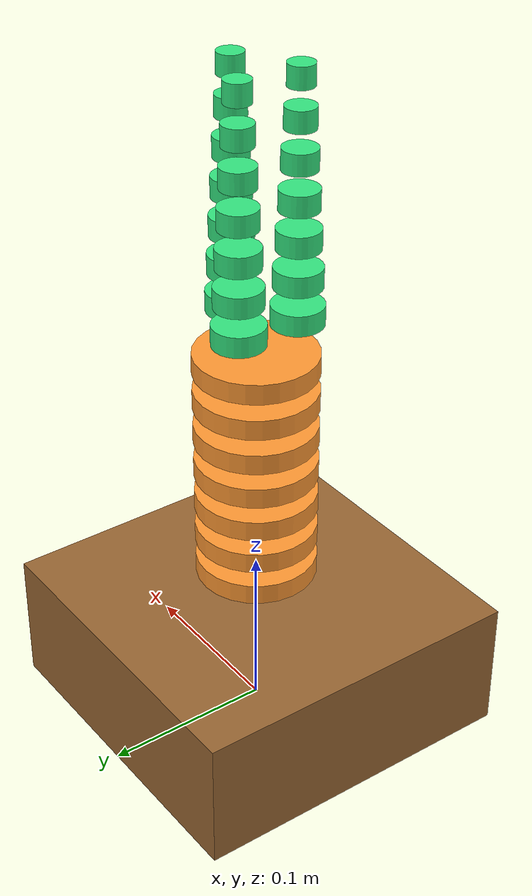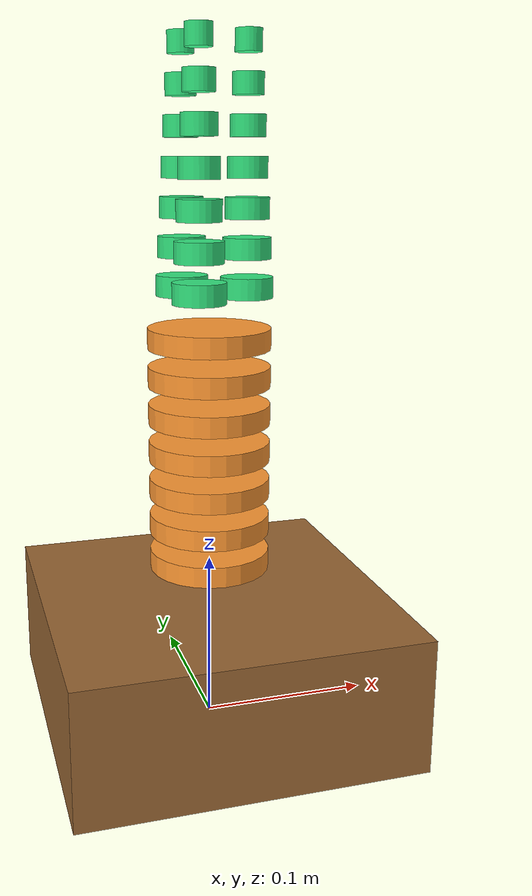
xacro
<?xml version="1.0"?>
<robot xmlns:xacro="http://www.ros.org/wiki/xacro" name="gripper_robot">

  <!-- Robot Dimensional Constants -->
  <xacro:property name="ground_offset" value="0.080"/>       <!-- 80mm - distance from ground to first joints -->
  <xacro:property name="H" value="0.022"/>                   <!-- 22mm - equal H distance everywhere -->
  <xacro:property name="revolute_limit" value="0.2094"/>     <!-- ±12° in radians -->
  <xacro:property name="disc_radius" value="0.0352"/>        <!-- 35.2mm radius = 70.4mm diameter -->
  <xacro:property name="disc_height" value="0.012"/>         <!-- 12mm disc thickness -->

  <!-- Gripper Constants -->
  <xacro:property name="finger_base_radius" value="0.015"/>  <!-- 15mm radius = 30mm diameter at base -->
  <xacro:property name="finger_tip_radius" value="0.0075"/>  <!-- 7.5mm radius = 15mm diameter at tip -->
  <xacro:property name="finger_offset" value="0.022"/>       <!-- ~62% of disc radius = 22mm from center (between 25% and 100%) -->

  <!-- Robot Segment Macro (for main body) -->
  <xacro:macro name="robot_segment" params="segment_num parent_link is_actuated_x is_actuated_y mimic_segment disc_color">

    <!-- Revolute Joint X (Roll) -->
    <joint name="seg${segment_num}_joint_x" type="revolute">
      <parent link="${parent_link}"/>
      <child link="seg${segment_num}_x_link"/>
      <origin xyz="0 0 0" rpy="0 0 0"/>
      <axis xyz="1 0 0"/>
      <limit lower="-${revolute_limit}" upper="${revolute_limit}" effort="100" velocity="1.0"/>
      <xacro:if value="${is_actuated_x}">
        <dynamics damping="0.7" friction="0.0"/>
      </xacro:if>
      <xacro:unless value="${is_actuated_x}">
        <mimic joint="seg${mimic_segment}_joint_x" multiplier="1.0" offset="0.0"/>
        <dynamics damping="0.1" friction="0.0"/>
      </xacro:unless>
    </joint>

    <link name="seg${segment_num}_x_link">
      <inertial>
        <origin xyz="0 0 0" rpy="0 0 0"/>
        <mass value="0.01"/>
        <inertia ixx="0.00001" ixy="0" ixz="0" iyy="0.00001" iyz="0" izz="0.00001"/>
      </inertial>
    </link>

    <!-- Revolute Joint Y (Pitch) -->
    <joint name="seg${segment_num}_joint_y" type="revolute">
      <parent link="seg${segment_num}_x_link"/>
      <child link="seg${segment_num}_y_link"/>
      <origin xyz="0 0 0" rpy="0 0 0"/>
      <axis xyz="0 1 0"/>
      <limit lower="-${revolute_limit}" upper="${revolute_limit}" effort="100" velocity="1.0"/>
      <xacro:if value="${is_actuated_y}">
        <dynamics damping="0.7" friction="0.0"/>
      </xacro:if>
      <xacro:unless value="${is_actuated_y}">
        <mimic joint="seg${mimic_segment}_joint_y" multiplier="1.0" offset="0.0"/>
        <dynamics damping="0.1" friction="0.0"/>
      </xacro:unless>
    </joint>

    <link name="seg${segment_num}_y_link">
      <inertial>
        <origin xyz="0 0 0" rpy="0 0 0"/>
        <mass value="0.01"/>
        <inertia ixx="0.00001" ixy="0" ixz="0" iyy="0.00001" iyz="0" izz="0.00001"/>
      </inertial>
    </link>

    <!-- Fixed H distance joint -->
    <joint name="seg${segment_num}_fixed_h" type="fixed">
      <parent link="seg${segment_num}_y_link"/>
      <child link="seg${segment_num}_mid_link"/>
      <origin xyz="0 0 ${H}" rpy="0 0 0"/>
    </joint>

    <!-- Middle link with disc platform -->
    <link name="seg${segment_num}_mid_link">
      <visual>
        <origin xyz="0 0 0" rpy="0 0 0"/>
        <geometry>
          <cylinder radius="${disc_radius}" length="${disc_height}"/>
        </geometry>
        <material name="disc_${segment_num}">
          <color rgba="${disc_color}"/>
        </material>
      </visual>
      <collision>
        <origin xyz="0 0 0" rpy="0 0 0"/>
        <geometry>
          <cylinder radius="${disc_radius}" length="${disc_height}"/>
        </geometry>
      </collision>
      <inertial>
        <origin xyz="0 0 0" rpy="0 0 0"/>
        <mass value="0.5"/>
        <inertia ixx="0.002" ixy="0" ixz="0" iyy="0.002" iyz="0" izz="0.003"/>
      </inertial>
    </link>

  </xacro:macro>

  <!-- Gripper Finger Segment Macro -->
  <xacro:macro name="finger_segment" params="finger_num level_num parent_link is_actuated mimic_joint disc_radius_val">

    <!-- Revolute Joint (opens/closes) -->
    <joint name="finger${finger_num}_level${level_num}_joint" type="revolute">
      <parent link="${parent_link}"/>
      <child link="finger${finger_num}_level${level_num}_link"/>
      <origin xyz="0 0 0" rpy="0 0 0"/>
      <axis xyz="0 1 0"/>
      <limit lower="0" upper="${revolute_limit}" effort="50" velocity="1.0"/>
      <xacro:if value="${is_actuated}">
        <dynamics damping="0.5" friction="0.0"/>
      </xacro:if>
      <xacro:unless value="${is_actuated}">
        <mimic joint="${mimic_joint}" multiplier="1.0" offset="0.0"/>
        <dynamics damping="0.1" friction="0.0"/>
      </xacro:unless>
    </joint>

    <link name="finger${finger_num}_level${level_num}_link">
      <inertial>
        <origin xyz="0 0 0" rpy="0 0 0"/>
        <mass value="0.01"/>
        <inertia ixx="0.00001" ixy="0" ixz="0" iyy="0.00001" iyz="0" izz="0.00001"/>
      </inertial>
    </link>

    <!-- Fixed H distance to disc -->
    <joint name="finger${finger_num}_level${level_num}_fixed" type="fixed">
      <parent link="finger${finger_num}_level${level_num}_link"/>
      <child link="finger${finger_num}_level${level_num}_disc"/>
      <origin xyz="0 0 ${H}" rpy="0 0 0"/>
    </joint>

    <!-- Disc -->
    <link name="finger${finger_num}_level${level_num}_disc">
      <visual>
        <origin xyz="0 0 0" rpy="0 0 0"/>
        <geometry>
          <cylinder radius="${disc_radius_val}" length="${disc_height}"/>
        </geometry>
        <material name="finger${finger_num}_mat">
          <color rgba="0.2 0.9 0.5 1.0"/>
        </material>
      </visual>
      <collision>
        <origin xyz="0 0 0" rpy="0 0 0"/>
        <geometry>
          <cylinder radius="${disc_radius_val}" length="${disc_height}"/>
        </geometry>
      </collision>
      <inertial>
        <origin xyz="0 0 0" rpy="0 0 0"/>
        <mass value="0.1"/>
        <inertia ixx="0.0001" ixy="0" ixz="0" iyy="0.0001" iyz="0" izz="0.0001"/>
      </inertial>
    </link>

  </xacro:macro>

  <!-- Base Link -->
  <link name="base_link">
    <visual>
      <origin xyz="0 0 ${ground_offset/2}" rpy="0 0 0"/>
      <geometry>
        <box size="0.2 0.2 ${ground_offset}"/>
      </geometry>
      <material name="brown">
        <color rgba="0.6 0.4 0.2 1.0"/>
      </material>
    </visual>
    <collision>
      <origin xyz="0 0 ${ground_offset/2}" rpy="0 0 0"/>
      <geometry>
        <box size="0.2 0.2 ${ground_offset}"/>
      </geometry>
    </collision>
    <inertial>
      <origin xyz="0 0 ${ground_offset/2}" rpy="0 0 0"/>
      <mass value="2.0"/>
      <inertia ixx="0.01" ixy="0" ixz="0" iyy="0.01" iyz="0" izz="0.01"/>
    </inertial>
  </link>

  <joint name="base_to_seg1" type="fixed">
    <parent link="base_link"/>
    <child link="seg1_mount"/>
    <origin xyz="0 0 ${ground_offset}" rpy="0 0 0"/>
  </joint>

  <link name="seg1_mount">
    <inertial>
      <mass value="0.01"/>
      <inertia ixx="0.00001" ixy="0" ixz="0" iyy="0.00001" iyz="0" izz="0.00001"/>
    </inertial>
  </link>

  <!-- ===== BOTTOM 7 segments (ORANGE) ===== -->
  <xacro:robot_segment segment_num="1" parent_link="seg1_mount" is_actuated_x="true" is_actuated_y="true" mimic_segment="1" disc_color="1.0 0.6 0.2 1.0"/>
  <xacro:robot_segment segment_num="2" parent_link="seg1_mid_link" is_actuated_x="false" is_actuated_y="false" mimic_segment="1" disc_color="1.0 0.6 0.2 1.0"/>
  <xacro:robot_segment segment_num="3" parent_link="seg2_mid_link" is_actuated_x="false" is_actuated_y="false" mimic_segment="1" disc_color="1.0 0.6 0.2 1.0"/>
  <xacro:robot_segment segment_num="4" parent_link="seg3_mid_link" is_actuated_x="false" is_actuated_y="false" mimic_segment="1" disc_color="1.0 0.6 0.2 1.0"/>
  <xacro:robot_segment segment_num="5" parent_link="seg4_mid_link" is_actuated_x="false" is_actuated_y="false" mimic_segment="1" disc_color="1.0 0.6 0.2 1.0"/>
  <xacro:robot_segment segment_num="6" parent_link="seg5_mid_link" is_actuated_x="false" is_actuated_y="false" mimic_segment="1" disc_color="1.0 0.6 0.2 1.0"/>
  <xacro:robot_segment segment_num="7" parent_link="seg6_mid_link" is_actuated_x="false" is_actuated_y="false" mimic_segment="1" disc_color="1.0 0.6 0.2 1.0"/>

  <!-- ===== GRIPPER BASE (on top of seg7) ===== -->
  <joint name="gripper_base_joint" type="fixed">
    <parent link="seg7_mid_link"/>
    <child link="gripper_base"/>
    <origin xyz="0 0 ${disc_height/2}" rpy="0 0 0"/>
  </joint>

  <link name="gripper_base">
    <inertial>
      <mass value="0.1"/>
      <inertia ixx="0.0001" ixy="0" ixz="0" iyy="0.0001" iyz="0" izz="0.0001"/>
    </inertial>
  </link>

  <!-- ===== FINGER 1 (at 0°) ===== -->
  <joint name="finger1_mount" type="fixed">
    <parent link="gripper_base"/>
    <child link="finger1_base"/>
    <origin xyz="${finger_offset} 0 0" rpy="0 0 0"/>
  </joint>
  <link name="finger1_base">
    <inertial>
      <mass value="0.01"/>
      <inertia ixx="0.00001" ixy="0" ixz="0" iyy="0.00001" iyz="0" izz="0.00001"/>
    </inertial>
  </link>

  <!-- Finger 1 levels with tapering radius -->
  <xacro:finger_segment finger_num="1" level_num="1" parent_link="finger1_base" is_actuated="true" mimic_joint="" disc_radius_val="${finger_base_radius}"/>
  <xacro:finger_segment finger_num="1" level_num="2" parent_link="finger1_level1_disc" is_actuated="false" mimic_joint="finger1_level1_joint" disc_radius_val="${finger_base_radius - 1*(finger_base_radius - finger_tip_radius)/6}"/>
  <xacro:finger_segment finger_num="1" level_num="3" parent_link="finger1_level2_disc" is_actuated="false" mimic_joint="finger1_level1_joint" disc_radius_val="${finger_base_radius - 2*(finger_base_radius - finger_tip_radius)/6}"/>
  <xacro:finger_segment finger_num="1" level_num="4" parent_link="finger1_level3_disc" is_actuated="false" mimic_joint="finger1_level1_joint" disc_radius_val="${finger_base_radius - 3*(finger_base_radius - finger_tip_radius)/6}"/>
  <xacro:finger_segment finger_num="1" level_num="5" parent_link="finger1_level4_disc" is_actuated="false" mimic_joint="finger1_level1_joint" disc_radius_val="${finger_base_radius - 4*(finger_base_radius - finger_tip_radius)/6}"/>
  <xacro:finger_segment finger_num="1" level_num="6" parent_link="finger1_level5_disc" is_actuated="false" mimic_joint="finger1_level1_joint" disc_radius_val="${finger_base_radius - 5*(finger_base_radius - finger_tip_radius)/6}"/>
  <xacro:finger_segment finger_num="1" level_num="7" parent_link="finger1_level6_disc" is_actuated="false" mimic_joint="finger1_level1_joint" disc_radius_val="${finger_tip_radius}"/>

  <!-- ===== FINGER 2 (at 120°) ===== -->
  <joint name="finger2_mount" type="fixed">
    <parent link="gripper_base"/>
    <child link="finger2_base"/>
    <origin xyz="${finger_offset*cos(2.0944)} ${finger_offset*sin(2.0944)} 0" rpy="0 0 2.0944"/>
  </joint>
  <link name="finger2_base">
    <inertial>
      <mass value="0.01"/>
      <inertia ixx="0.00001" ixy="0" ixz="0" iyy="0.00001" iyz="0" izz="0.00001"/>
    </inertial>
  </link>

  <!-- Finger 2 levels -->
  <xacro:finger_segment finger_num="2" level_num="1" parent_link="finger2_base" is_actuated="false" mimic_joint="finger1_level1_joint" disc_radius_val="${finger_base_radius}"/>
  <xacro:finger_segment finger_num="2" level_num="2" parent_link="finger2_level1_disc" is_actuated="false" mimic_joint="finger1_level1_joint" disc_radius_val="${finger_base_radius - 1*(finger_base_radius - finger_tip_radius)/6}"/>
  <xacro:finger_segment finger_num="2" level_num="3" parent_link="finger2_level2_disc" is_actuated="false" mimic_joint="finger1_level1_joint" disc_radius_val="${finger_base_radius - 2*(finger_base_radius - finger_tip_radius)/6}"/>
  <xacro:finger_segment finger_num="2" level_num="4" parent_link="finger2_level3_disc" is_actuated="false" mimic_joint="finger1_level1_joint" disc_radius_val="${finger_base_radius - 3*(finger_base_radius - finger_tip_radius)/6}"/>
  <xacro:finger_segment finger_num="2" level_num="5" parent_link="finger2_level4_disc" is_actuated="false" mimic_joint="finger1_level1_joint" disc_radius_val="${finger_base_radius - 4*(finger_base_radius - finger_tip_radius)/6}"/>
  <xacro:finger_segment finger_num="2" level_num="6" parent_link="finger2_level5_disc" is_actuated="false" mimic_joint="finger1_level1_joint" disc_radius_val="${finger_base_radius - 5*(finger_base_radius - finger_tip_radius)/6}"/>
  <xacro:finger_segment finger_num="2" level_num="7" parent_link="finger2_level6_disc" is_actuated="false" mimic_joint="finger1_level1_joint" disc_radius_val="${finger_tip_radius}"/>

  <!-- ===== FINGER 3 (at 240°) ===== -->
  <joint name="finger3_mount" type="fixed">
    <parent link="gripper_base"/>
    <child link="finger3_base"/>
    <origin xyz="${finger_offset*cos(4.1888)} ${finger_offset*sin(4.1888)} 0" rpy="0 0 4.1888"/>
  </joint>
  <link name="finger3_base">
    <inertial>
      <mass value="0.01"/>
      <inertia ixx="0.00001" ixy="0" ixz="0" iyy="0.00001" iyz="0" izz="0.00001"/>
    </inertial>
  </link>

  <!-- Finger 3 levels -->
  <xacro:finger_segment finger_num="3" level_num="1" parent_link="finger3_base" is_actuated="false" mimic_joint="finger1_level1_joint" disc_radius_val="${finger_base_radius}"/>
  <xacro:finger_segment finger_num="3" level_num="2" parent_link="finger3_level1_disc" is_actuated="false" mimic_joint="finger1_level1_joint" disc_radius_val="${finger_base_radius - 1*(finger_base_radius - finger_tip_radius)/6}"/>
  <xacro:finger_segment finger_num="3" level_num="3" parent_link="finger3_level2_disc" is_actuated="false" mimic_joint="finger1_level1_joint" disc_radius_val="${finger_base_radius - 2*(finger_base_radius - finger_tip_radius)/6}"/>
  <xacro:finger_segment finger_num="3" level_num="4" parent_link="finger3_level3_disc" is_actuated="false" mimic_joint="finger1_level1_joint" disc_radius_val="${finger_base_radius - 3*(finger_base_radius - finger_tip_radius)/6}"/>
  <xacro:finger_segment finger_num="3" level_num="5" parent_link="finger3_level4_disc" is_actuated="false" mimic_joint="finger1_level1_joint" disc_radius_val="${finger_base_radius - 4*(finger_base_radius - finger_tip_radius)/6}"/>
  <xacro:finger_segment finger_num="3" level_num="6" parent_link="finger3_level5_disc" is_actuated="false" mimic_joint="finger1_level1_joint" disc_radius_val="${finger_base_radius - 5*(finger_base_radius - finger_tip_radius)/6}"/>
  <xacro:finger_segment finger_num="3" level_num="7" parent_link="finger3_level6_disc" is_actuated="false" mimic_joint="finger1_level1_joint" disc_radius_val="${finger_tip_radius}"/>

</robot>
